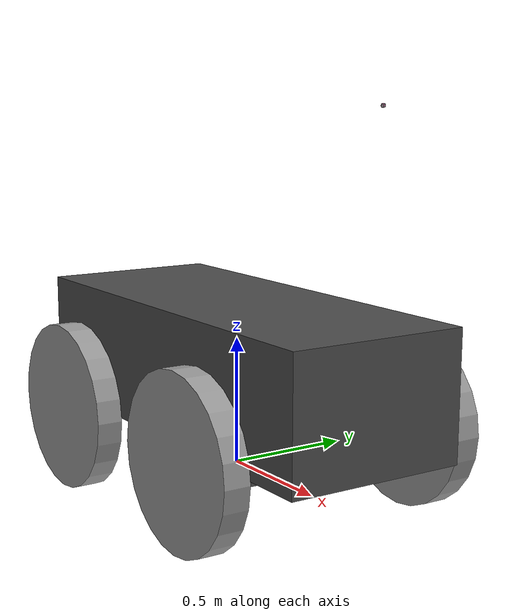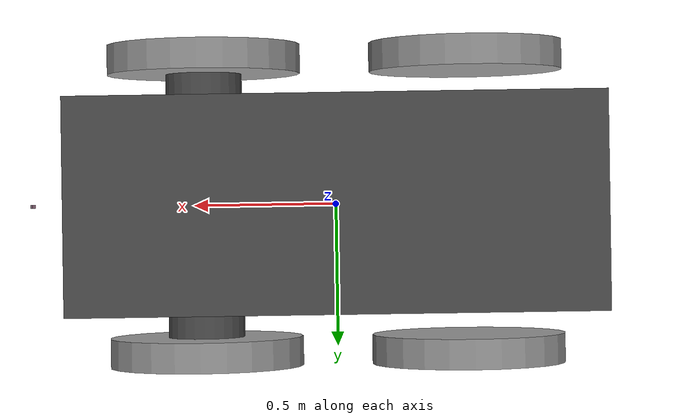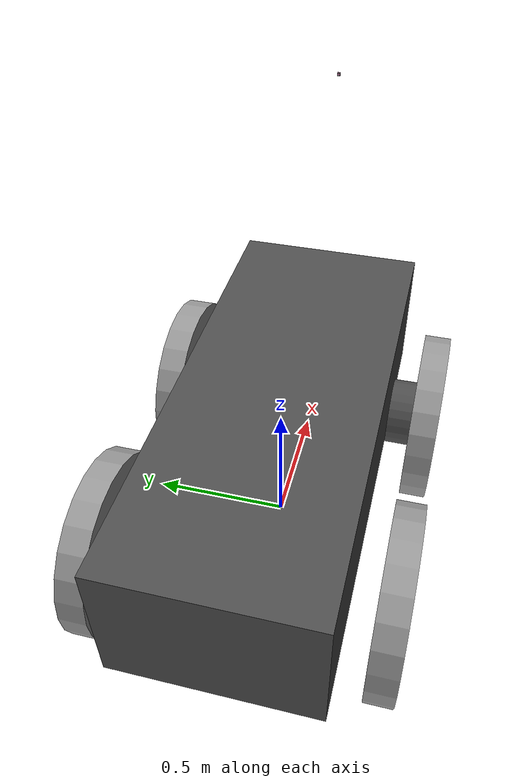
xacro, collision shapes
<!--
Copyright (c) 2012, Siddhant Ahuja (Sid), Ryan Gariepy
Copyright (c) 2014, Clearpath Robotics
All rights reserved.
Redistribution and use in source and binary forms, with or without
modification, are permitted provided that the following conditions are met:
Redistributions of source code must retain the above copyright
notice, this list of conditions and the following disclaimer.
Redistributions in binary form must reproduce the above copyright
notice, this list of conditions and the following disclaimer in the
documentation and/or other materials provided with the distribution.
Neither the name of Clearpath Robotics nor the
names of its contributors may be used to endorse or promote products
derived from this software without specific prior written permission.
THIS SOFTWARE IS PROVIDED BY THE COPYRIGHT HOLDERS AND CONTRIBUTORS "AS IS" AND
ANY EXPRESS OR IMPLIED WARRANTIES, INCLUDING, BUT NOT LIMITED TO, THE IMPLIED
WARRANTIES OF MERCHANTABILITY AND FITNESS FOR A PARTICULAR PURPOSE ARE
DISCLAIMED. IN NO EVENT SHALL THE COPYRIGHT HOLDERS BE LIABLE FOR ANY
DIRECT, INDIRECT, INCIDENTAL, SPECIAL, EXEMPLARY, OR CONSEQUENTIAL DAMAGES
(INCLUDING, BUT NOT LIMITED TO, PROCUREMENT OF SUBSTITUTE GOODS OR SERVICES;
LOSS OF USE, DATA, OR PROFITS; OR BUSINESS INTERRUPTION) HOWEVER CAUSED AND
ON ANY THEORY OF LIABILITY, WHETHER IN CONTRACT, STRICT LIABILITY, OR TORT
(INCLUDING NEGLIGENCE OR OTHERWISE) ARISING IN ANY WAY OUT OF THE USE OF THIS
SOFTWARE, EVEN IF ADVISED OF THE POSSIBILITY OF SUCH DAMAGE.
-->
<?xml version="1.0"?>

<robot name="grizzly" xmlns:xacro="http://www.ros.org/wiki/xacro">
  <property name="M_PI" value="3.1415926535897931" />
  <property name="ground_clearance" value="0.203" />

  <!-- Included URDF/XACRO Files -->
  <xacro:include filename="$(find seniorcar_gazebo_simulator)/urdf/materials.urdf.xacro" />
  <xacro:include filename="$(find seniorcar_gazebo_simulator)/urdf/wheel.urdf.xacro" />
  <xacro:include filename="$(find seniorcar_gazebo_simulator)/urdf/grizzly.gazebo" />

  <!-- Key Dimensions -->
  <property name="chassis_length" value="1.75" />
  <property name="chassis_width" value="0.711" />
  <property name="chassis_height" value="0.495" />
  <property name="chassis_mass" value="487" />
  <property name="front_axle_mass" value="113" />
  <property name="front_axle_radius" value="0.13" />
  <property name="front_axle_length" value="1.0" />
  <property name="base_x_origin_to_wheel_origin" value="0.448" />
  <property name="base_y_origin_to_wheel_origin" value="0.499" />
  <property name="base_z_origin_to_wheel_origin" value="0.0" />

  <!-- Root link of Grizzly -->
  <link name="base_link" />

  <!-- Actual body/chassis of the robot, separate from base_link due to KDL inertia issue. -->
  <link name="chassis_link">
    <inertial>
      <mass value="${chassis_mass}"/>
      <origin xyz="-0.013 -0.00061 -0.0205"/>
      <inertia ixx="64.010712692" ixy="0.214224647" ixz="-1.636784296"
               iyy="200.87" iyz="-0.048325439" izz="229.831441333" />
    </inertial>
    <visual>
      <origin xyz="0 0 ${ground_clearance}"
              rpy="${M_PI/2} 0 ${M_PI/2}" />
      <geometry>
        <mesh filename="package://grizzly_description/meshes/base_link.stl" />
      </geometry>
      <material name="DarkGrey" />
    </visual>
    <collision>
      <origin xyz="0 0 ${ground_clearance}"
              rpy="${M_PI/2} 0 ${M_PI/2}" />
      <geometry>
         <box size="${chassis_width} ${chassis_height} ${chassis_length}" />
      </geometry>
    </collision>
  </link>
  <joint name="chassis_joint"
         type="fixed">
    <origin xyz="0 0 ${ground_clearance}"
            rpy="0 0 0"/>
    <parent link="base_link" />
    <child link="chassis_link" />
  </joint>

  <!-- Add a sensor anchor link that points to the center of the robot top plate -->
  <link name="sensor_anchor_link"/>
  <joint name="sensor_anchor_joint" type="fixed">
    <origin xyz="0 0 ${chassis_height}"
            rpy="0 0 0" />
    <parent link="chassis_link" />
    <child link="sensor_anchor_link" />
  </joint>

  <!-- This is the approximate position of the GPS antenna on the standard configuration. -->
  <link name="navsat_link" />
  <joint name="navsat_joint" type="fixed">
    <origin xyz="-${chassis_length/2} 0 0"
            rpy="0 0 0" />
    <parent link="sensor_anchor_link" />
    <child link="navsat_link" />
  </joint>

  <!-- The position and orientation of the IMU in the rear compartment. -->
  <link name="imu_link" />
  <joint name="imu_joint" type="fixed">
    <origin xyz="-${chassis_length/2} 0 -${chassis_height/2}"
             rpy="${M_PI} ${M_PI/2} 0" />
    <parent link="sensor_anchor_link" />
    <child link="imu_link" />
  </joint>

  <!-- Purely decorative visual component. -->
  <link name="fenders_link">
    <visual>
      <origin xyz="0 0 ${ground_clearance}" rpy="${M_PI/2} 0 ${M_PI/2}"/>
      <geometry>
        <mesh filename="package://grizzly_description/meshes/bumper.stl" />
      </geometry>
      <material name="Yellow" />
    </visual>
  </link>
  <joint name="fenders_joint" type="fixed">
    <parent link="chassis_link" />
    <child link="fenders_link" />
  </joint>

  <link name="front_axle_link">
    <inertial>
      <mass value="${front_axle_mass}" />
      <origin xyz="0 0 0"/>
      <inertia ixx="9.9" ixy="0.0" ixz="0.0" iyy="9.9" iyz="0.0" izz="0.95" />
    </inertial>
    <visual>
      <origin xyz="-${ground_clearance} 0 ${base_y_origin_to_wheel_origin}"
              rpy="0 ${M_PI} ${M_PI/2}" />
      <geometry>
        <mesh filename="package://grizzly_description/meshes/front_axle.stl" />
      </geometry>
      <material name="DarkGrey" />
    </visual>
    <collision>
      <origin xyz="0 0 0"
              rpy="${M_PI/2} 0 0" />
      <geometry>
        <cylinder length="${front_axle_length}"
                  radius="${front_axle_radius}" />
      </geometry>
    </collision>
  </link>
  <joint name="front_axle_joint"
         type="fixed">
    <origin xyz="${base_x_origin_to_wheel_origin} 0 0"
            rpy="0 0 0" />
    <parent link="chassis_link" />
    <child link="front_axle_link" />
  </joint>

  <grizzly_wheel fr="front" lr="left" parent="front_axle_link"
                 translateX="0" translateY="1" flipY="0" />
  <grizzly_wheel fr="front" lr="right" parent="front_axle_link"
                 translateX="0" translateY="-1" flipY="1" />
  <grizzly_wheel fr="rear" lr="left" parent="chassis_link"
                 translateX="-1" translateY="1" flipY="0" />
  <grizzly_wheel fr="rear" lr="right" parent="chassis_link"
                 translateX="-1" translateY="-1" flipY="1" />

  <!-- Depth Sensor Original -->
  <link name="pico_flexx_link_optical_frame" />
  <link name="pico_flexx_depth_frame"/>
  <link name="pico_flexx_link">
    <visual>
      <geometry>
        <box size="0.007 0.066 0.016"/>
      </geometry>
    <material name="green"/>
    </visual>
    <collision>
      <geometry>
        <box size="0.007 0.066 0.016"/>
      </geometry>
    </collision>
    <inertial>
      <origin xyz="0 0 0" rpy="0 0 0"/>
      <mass value="1"/>
      <inertia
        ixx="1.0" ixy="0.0" ixz="0.0"
        iyy="1.0" iyz="0.0"
        izz="1.0"/>
    </inertial>
  </link>

 <joint name="pico_flexx_base_joint" type="fixed">
   <origin xyz="0.85 0 0.6" rpy="0 0 0"/>
   <parent link="base_link"/>
   <child link="pico_flexx_link_optical_frame"/>
 </joint>

 <joint name="pico_flexx_depth_joint" type="fixed">
   <origin xyz="0 0 0" rpy="${-M_PI/2} 0 ${-M_PI/2}" />
   <parent link="pico_flexx_link_optical_frame" />
   <child link="pico_flexx_depth_frame" />
 </joint>

  <joint name="pico_flexx_joint" type="fixed">
    <origin xyz="0 0 0" rpy="0 0 0"/>
    <parent link="pico_flexx_link_optical_frame"/>
    <child link="pico_flexx_link"/>
  </joint>

    <!-- LRF Original -->
  <joint name="hokuyo_joint" type="fixed">
    <axis xyz="0 0 0" />
    <origin xyz="0.0 0.0 0.8" rpy="0 0.4 0"/>
    <parent link="pico_flexx_link_optical_frame"/>
    <child link="hokuyo_link"/>
  </joint>

  <link name="hokuyo_link">
    <collision>
      <origin xyz="0 0 0" rpy="0 0.4 0"/>
      <geometry>
        <box size="0.01 0.01 0.01"/>
      </geometry>
    </collision>

    <visual>
      <origin xyz="0 0 0" rpy="0 0 0"/>
      <geometry>
        <box size="0.01 0.01 0.01"/>
      </geometry>
    </visual>

    <inertial>
      <mass value="1e-5" />
      <origin xyz="0 0 0" rpy="0 0 0"/>
      <inertia ixx="1e-6" ixy="0" ixz="0" iyy="1e-6" iyz="0" izz="1e-6" />
    </inertial>
  </link>

  <!-- Velodyne Original -->
    <joint name="velodyne_joint" type="fixed">
    <axis xyz="0 0 0" />
    <origin xyz="0.0 0.0 0.8" rpy="0 0 0"/>
    <parent link="pico_flexx_link_optical_frame"/>
    <child link="velodyne_link"/>
  </joint>

  <!-- Hokuyo Laser -->
  <link name="velodyne_link">
    <collision>
      <origin xyz="0 0 0" rpy="0 0 0"/>
      <geometry>
        <box size="0.01 0.01 0.01"/>
      </geometry>
    </collision>

    <visual>
      <origin xyz="0 0 0" rpy="0 0 0"/>
      <geometry>
        <box size="0.01 0.01 0.01"/>
      </geometry>
    </visual>

    <inertial>
      <mass value="1e-5" />
      <origin xyz="0 0 0" rpy="0 0 0"/>
      <inertia ixx="1e-6" ixy="0" ixz="0" iyy="1e-6" iyz="0" izz="1e-6" />
    </inertial>
  </link>

  <!-- human wieght -->

</robot>

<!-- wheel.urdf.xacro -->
<robot name="grizzly_wheel" xmlns:xacro="http://ros.org/wiki/xacro">
  <property name="wheel_mass" value="10" />
  <property name="wheel_radius" value="0.33" />
  <property name="wheel_width" value="0.1" />

  <xacro:macro name="grizzly_wheel"
               params="fr lr parent translateX translateY flipY">
    <!--fr : front, rear ; lr: left, right -->
    <link name="${fr}_${lr}_wheel">
      <inertial>
        <mass value="${wheel_mass}" />
        <origin xyz="-0.002 -0.198 0.003" />
        <inertia ixx="14.68" ixy="-0.033" ixz="0.07"
                 iyy="26.7" iyz="-0.05" izz="14.68" />
      </inertial>
      <visual>
        <origin xyz="0 0 0"
                rpy="${M_PI/2} ${flipY*M_PI} ${M_PI/2}" />
        <geometry>
          <mesh filename="package://grizzly_description/meshes/wheel.stl" />
        </geometry>
        <material name="Grey" />
      </visual>
      <collision>
        <origin xyz="0 0 0"
                rpy="${M_PI/2} ${flipY*M_PI} 0" />
        <geometry>
          <cylinder length="${wheel_width}"
                    radius="${wheel_radius}" />
        </geometry>
      </collision>
    </link>
    <gazebo reference="${fr}_${lr}_wheel">
      <mu1 value="0.7" />
      <mu2 value="0.7" />
      <kp value="1000000.0" />
      <kd value="1.0" />
      <fdir1 value="1 0 0" />
      <material>Gazebo/Grey</material>
      <turnGravityOff>false</turnGravityOff>
      <selfCollide>true</selfCollide>
    </gazebo>
    <joint name="joint_${fr}_${lr}_wheel"
           type="continuous">
      <parent link="${parent}" />
      <child link="${fr}_${lr}_wheel" />
      <origin xyz="${translateX * base_x_origin_to_wheel_origin} ${translateY * base_y_origin_to_wheel_origin} 0"
              rpy="0 0 0" />
      <axis xyz="0 1 0"
            rpy="0 0 0" />
      <limit effort="100"
             velocity="100" />
      <joint_properties damping="0.0"
                        friction="0.0" />
    </joint>
    <!-- Transmission links the joints and the controller -->
  </xacro:macro>
</robot>
